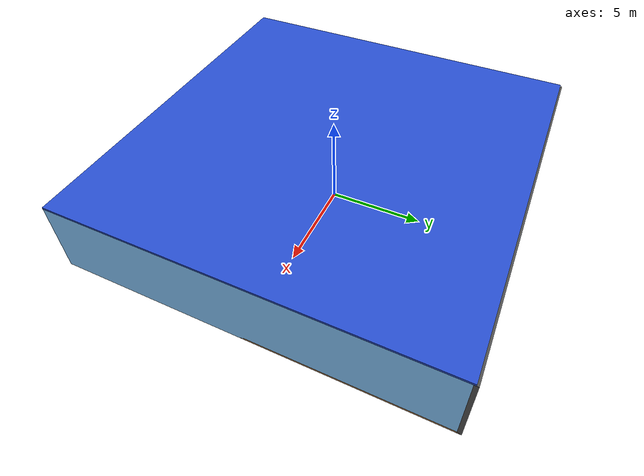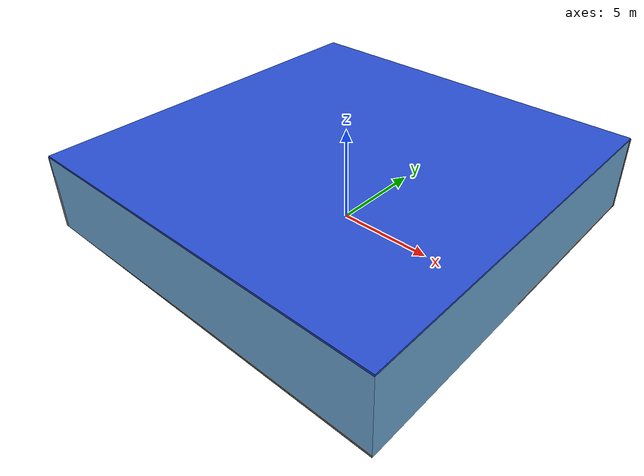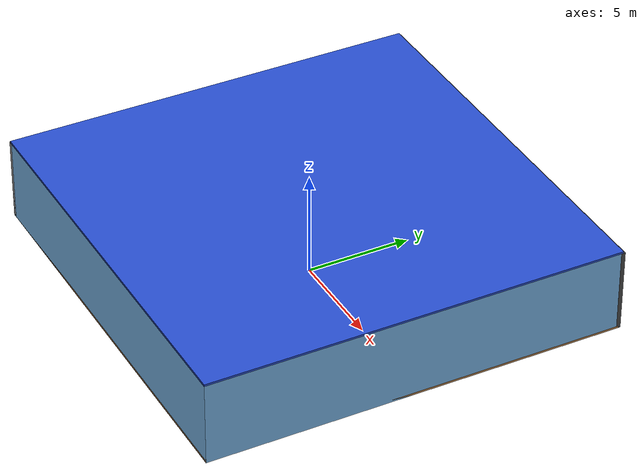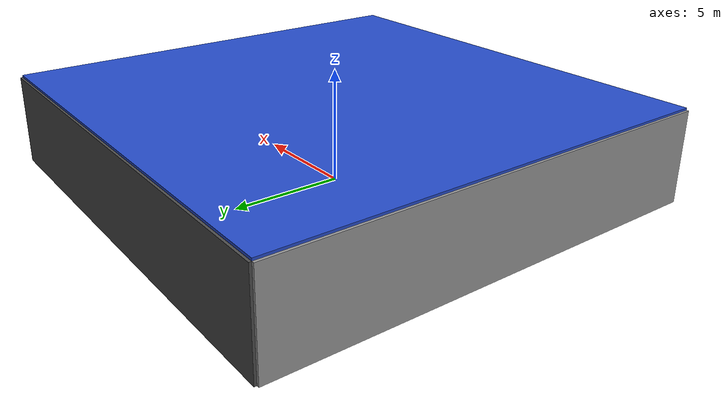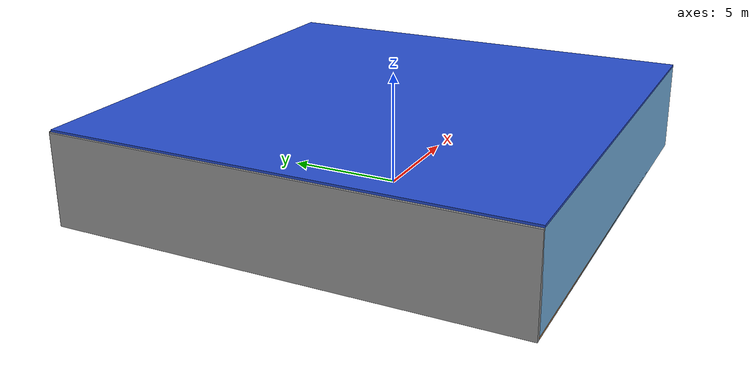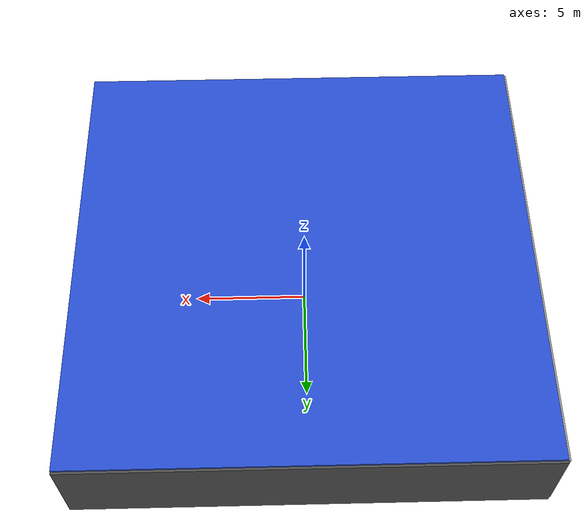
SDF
<sdf version="1.4">
 <world name="default">
  <physics type="ode">
   <max_step_size>0.001</max_step_size>
   <real_time_factor>1</real_time_factor>
   <real_time_update_rate>1000</real_time_update_rate>
   <gravity>0 0 -9.8</gravity>
  </physics>
  <scene><ambient>0.4 0.4 0.4 1</ambient><background>0.7 0.7 0.7 1</background><shadows>1</shadows></scene>
  <model name="Surrounding">
   <static>1</static>
   <link name="Ceiling">
    <collision name="Ceiling_Collision"><geometry><box><size>20 20 0.1</size></box></geometry></collision>
    <visual name="Ceiling_Visual">
     <geometry><box><size>20 20 0.1</size></box></geometry>
     <material>
      <script><uri>file://media/materials/scripts/gazebo.material</uri><name>Gazebo/Blue</name></script>
     </material>
    </visual>
    <pose>0 0 4.05 0 0 0</pose>
   </link>
   <link name="Wall_South">
    <collision name="Wall_South_Collision">
     <geometry><box><size>20 0 4</size></box></geometry>
     <pose>0 0 2 0 -0 0</pose>
    </collision>
    <visual name="Wall_South_Visual">
     <pose>0 0 2 0 -0 0</pose>
     <geometry><box><size>20 0 4</size></box></geometry>
     <material>
      <script><uri>file://media/materials/scripts/gazebo.material</uri><name>Gazebo/SkyBlue</name></script>
     </material>
    </visual>
    <velocity_decay><linear>0</linear><angular>0</angular></velocity_decay>
    <pose>0 -10 0 0 -0 0</pose>
   </link>
   <link name="Wall_East">
    <collision name="Wall_21_Collision">
     <geometry><box><size>20 0 4</size></box></geometry>
     <pose>0 0 2 0 -0 0</pose>
    </collision>
    <visual name="Wall_21_Visual">
     <pose>0 0 2 0 -0 0</pose>
     <geometry><box><size>20 0 4</size></box></geometry>
     <material>
      <script><uri>file://media/materials/scripts/gazebo.material</uri><name>Gazebo/SkyBlue</name></script>
     </material>
    </visual>
    <velocity_decay><linear>0</linear><angular>0</angular></velocity_decay>
    <pose>10 0 0 0 -0 1.5708</pose>
   </link>
   <link name="Wall_North">
    <collision name="Wall_22_Collision">
     <geometry><box><size>20 0.2 4</size></box></geometry>
     <pose>0 0 2 0 -0 0</pose>
    </collision>
    <visual name="Wall_22_Visual">
     <pose>0 0 2 0 -0 0</pose>
     <geometry><box><size>20 0.2 4</size></box></geometry>
     <material>
      <script><uri>file://media/materials/scripts/gazebo.material</uri><name>Gazebo/Road</name></script>
     </material>
    </visual>
    <velocity_decay><linear>0</linear><angular>0</angular></velocity_decay>
    <pose>0 10 0 0 -0 0</pose>
   </link>
   <link name="Wall_West">
    <collision name="Wall_23_Collision">
     <geometry><box><size>20 0.2 4</size></box></geometry>
     <pose>0 0 2 0 -0 0</pose>
    </collision>
    <visual name="Wall_23_Visual">
     <pose>0 0 2 0 -0 0</pose>
     <geometry><box><size>20 0.2 4</size></box></geometry>
     <material>
      <script><uri>file://media/materials/scripts/gazebo.material</uri><name>Gazebo/GreyGradientSky</name></script>
     </material>
    </visual>
    <velocity_decay><linear>0</linear><angular>0</angular></velocity_decay>
    <pose>-10 0 0 0 0 -1.5708</pose>
   </link>
   <link name="Ground_link">
    <collision name="collision">
     <pose>0 0 .05 0 -0 0</pose>
     <geometry><box><size>20 20 0.1</size></box></geometry>
    </collision>
    <visual name="visual">
     <pose>0 0 .05 0 -0 0</pose>
     <geometry><box><size>20 20 0.1</size></box></geometry>
     <material>
      <script><uri>file://media/materials/scripts/gazebo.material</uri><name>Gazebo/WoodPallet</name></script>
     </material>
    </visual>
   </link>
   <static>1</static>
  </model>
  <spherical_coordinates>
   <surface_model>EARTH_WGS84</surface_model>
   <latitude_deg>0</latitude_deg>
   <longitude_deg>0</longitude_deg>
   <elevation>0</elevation>
   <heading_deg>0</heading_deg>
  </spherical_coordinates>
  <light name="lightball_0" type="diffuse">
   <diffuse>0.8 0.8 0.8 1</diffuse>
   <specular>0.2 0.2 0.2 1</specular>
   <attenuation>
    <range>100</range>
    <constant>0.7</constant>
    <linear>0.01</linear>
    <quadratic>0.001</quadratic>
   </attenuation>
   <direction>-0.5 0.1 -0.9</direction>
   <pose>-8.45789238257 1.53858370215 1.88946328856 0 0 0</pose>
  </light>
  <light name="lightball_1" type="diffuse">
   <diffuse>0.8 0.8 0.8 1</diffuse>
   <specular>0.2 0.2 0.2 1</specular>
   <attenuation>
    <range>100</range>
    <constant>0.7</constant>
    <linear>0.01</linear>
    <quadratic>0.001</quadratic>
   </attenuation>
   <direction>-0.5 0.1 -0.9</direction>
   <pose>9.89253331535 -6.36170333503 3.01065970306 0 0 0</pose>
  </light>
  <light name="lightball_2" type="diffuse">
   <diffuse>0.8 0.8 0.8 1</diffuse>
   <specular>0.2 0.2 0.2 1</specular>
   <attenuation>
    <range>100</range>
    <constant>0.7</constant>
    <linear>0.01</linear>
    <quadratic>0.001</quadratic>
   </attenuation>
   <direction>-0.5 0.1 -0.9</direction>
   <pose>4.67057211369 6.21718359491 3.74505695117 0 0 0</pose>
  </light>
  <light name="lightball_3" type="diffuse">
   <diffuse>0.8 0.8 0.8 1</diffuse>
   <specular>0.2 0.2 0.2 1</specular>
   <attenuation>
    <range>100</range>
    <constant>0.7</constant>
    <linear>0.01</linear>
    <quadratic>0.001</quadratic>
   </attenuation>
   <direction>-0.5 0.1 -0.9</direction>
   <pose>-2.74750166601 9.00570425907 3.45761473389 0 0 0</pose>
  </light>
  <light name="lightball_4" type="diffuse">
   <diffuse>0.8 0.8 0.8 1</diffuse>
   <specular>0.2 0.2 0.2 1</specular>
   <attenuation>
    <range>100</range>
    <constant>0.7</constant>
    <linear>0.01</linear>
    <quadratic>0.001</quadratic>
   </attenuation>
   <direction>-0.5 0.1 -0.9</direction>
   <pose>-1.04731427138 1.51315068973 3.22835516574 0 0 0</pose>
  </light>
  <light name="lightball_5" type="diffuse">
   <diffuse>0.8 0.8 0.8 1</diffuse>
   <specular>0.2 0.2 0.2 1</specular>
   <attenuation>
    <range>100</range>
    <constant>0.7</constant>
    <linear>0.01</linear>
    <quadratic>0.001</quadratic>
   </attenuation>
   <direction>-0.5 0.1 -0.9</direction>
   <pose>4.47434415478 1.57169168435 1.15441704309 0 0 0</pose>
  </light>
  <light name="lightball_6" type="diffuse">
   <diffuse>0.8 0.8 0.8 1</diffuse>
   <specular>0.2 0.2 0.2 1</specular>
   <attenuation>
    <range>100</range>
    <constant>0.7</constant>
    <linear>0.01</linear>
    <quadratic>0.001</quadratic>
   </attenuation>
   <direction>-0.5 0.1 -0.9</direction>
   <pose>1.61547252466 -8.29109818205 0.681915543973 0 0 0</pose>
  </light>
  <light name="lightball_7" type="diffuse">
   <diffuse>0.8 0.8 0.8 1</diffuse>
   <specular>0.2 0.2 0.2 1</specular>
   <attenuation>
    <range>100</range>
    <constant>0.7</constant>
    <linear>0.01</linear>
    <quadratic>0.001</quadratic>
   </attenuation>
   <direction>-0.5 0.1 -0.9</direction>
   <pose>-1.52108315606 6.16190774224 3.44597892295 0 0 0</pose>
  </light>
  <light name="lightball_8" type="diffuse">
   <diffuse>0.8 0.8 0.8 1</diffuse>
   <specular>0.2 0.2 0.2 1</specular>
   <attenuation>
    <range>100</range>
    <constant>0.7</constant>
    <linear>0.01</linear>
    <quadratic>0.001</quadratic>
   </attenuation>
   <direction>-0.5 0.1 -0.9</direction>
   <pose>0.347255881006 -7.26311113248 2.8997784678 0 0 0</pose>
  </light>
  <include>
   <uri>model://robocup_3Dsim_goal</uri>
   <pose>-7.83120804357 -7.90495054629 0 0 0 2.75147118849</pose>
  </include>
  <include>
   <uri>model://textured_shapes</uri>
   <pose>-4.37867140016 1.85181202854 0 0 0 1.68062682835</pose>
  </include>
  <include>
   <uri>model://construction_cone</uri>
   <pose>2.05323442191 -3.83353099311 0 0 0 2.23573894306</pose>
  </include>
  <include><uri>model://table</uri><pose>1.85426820686 -1.3038508989 0 0 0 0.842225710601</pose></include>
  <include>
   <uri>model://construction_cone</uri>
   <pose>1.03813092391 1.63338018806 0 0 0 1.04160773043</pose>
  </include>
  <include>
   <uri>model://robocup_3Dsim_goal</uri>
   <pose>4.96221564857 1.72696713603 0 0 0 0.214155197497</pose>
  </include>
 </world>
</sdf>

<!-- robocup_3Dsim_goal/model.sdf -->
<sdf version="1.5">
  <model name="robocup_3d_goal">
    <static>true</static>
    <link name="left_post">
      <pose>0 1.05 0.45 0 0 0</pose>
      <collision name="collision">
        <geometry>
          <cylinder>
            <radius>0.05</radius>
            <length>0.9</length>
          </cylinder>
        </geometry>
      </collision>
      <visual name="visual">
        <geometry>
          <cylinder>
            <radius>0.05</radius>
            <length>0.9</length>
          </cylinder>
        </geometry>
        <material>
          <script>
            <uri>file://media/materials/scripts/gazebo.material</uri>
            <name>Gazebo/ZincYellow</name>
          </script>
        </material>
      </visual>
    </link>
    <link name="left_support_horiz_lower">
      <pose>0.30 1.05 0.01 0 0 0</pose>
      <collision name="collision">
        <geometry>
          <box>
            <size>0.50 0.02 0.02</size>
          </box>
        </geometry>
      </collision>
      <visual name="visual">
        <geometry>
          <box>
            <size>0.50 0.02 0.02</size>
          </box>
        </geometry>
        <material>
          <script>
            <uri>file://media/materials/scripts/gazebo.material</uri>
            <name>Gazebo/White</name>
          </script>
        </material>
      </visual>
    </link>
    <link name="left_support_horiz_upper">
      <pose>0.30 1.05 0.79 0 0 0</pose>
      <collision name="collision">
        <geometry>
          <box>
            <size>0.50 0.02 0.02</size>
          </box>
        </geometry>
      </collision>
      <visual name="visual">
        <geometry>
          <box>
            <size>0.50 0.02 0.02</size>
          </box>
        </geometry>
        <material>
          <script>
            <uri>file://media/materials/scripts/gazebo.material</uri>
            <name>Gazebo/White</name>
          </script>
        </material>
      </visual>
    </link>
    <link name="left_support_vertical">
      <pose>0.56 1.05 0.4 0 1.5708 0</pose>
      <collision name="collision">
        <geometry>
          <box>
            <size>0.80 0.02 0.02</size>
          </box>
        </geometry>
      </collision>
      <visual name="visual">
        <geometry>
          <box>
            <size>0.80 0.02 0.02</size>
          </box>
        </geometry>
        <material>
          <script>
            <uri>file://media/materials/scripts/gazebo.material</uri>
            <name>Gazebo/White</name>
          </script>
        </material>
      </visual>
    </link>
    <link name="right_support_horiz_lower">
      <pose>0.30 -1.05 0.01 0 0 0</pose>
      <collision name="collision">
        <geometry>
          <box>
            <size>0.50 0.02 0.02</size>
          </box>
        </geometry>
      </collision>
      <visual name="visual">
        <geometry>
          <box>
            <size>0.50 0.02 0.02</size>
          </box>
        </geometry>
        <material>
          <script>
            <uri>file://media/materials/scripts/gazebo.material</uri>
            <name>Gazebo/White</name>
          </script>
        </material>
      </visual>
    </link>
    <link name="right_support_horiz_upper">
      <pose>0.30 -1.05 0.79 0 0 0</pose>
      <collision name="collision">
        <geometry>
          <box>
            <size>0.50 0.02 0.02</size>
          </box>
        </geometry>
      </collision>
      <visual name="visual">
        <geometry>
          <box>
            <size>0.50 0.02 0.02</size>
          </box>
        </geometry>
        <material>
          <script>
            <uri>file://media/materials/scripts/gazebo.material</uri>
            <name>Gazebo/White</name>
          </script>
        </material>
      </visual>
    </link>
    <link name="right_support_vertical">
      <pose>0.56 -1.05 0.4 0 1.5708 0</pose>
      <collision name="collision">
        <geometry>
          <box>
            <size>0.80 0.02 0.02</size>
          </box>
        </geometry>
      </collision>
      <visual name="visual">
        <geometry>
          <box>
            <size>0.80 0.02 0.02</size>
          </box>
        </geometry>
        <material>
          <script>
            <uri>file://media/materials/scripts/gazebo.material</uri>
            <name>Gazebo/White</name>
          </script>
        </material>
      </visual>
    </link>
    <link name="center_support_horiz_lower">
      <pose>0.56 0 0.01 0 1.5708 0</pose>
      <collision name="collision">
        <geometry>
          <box>
            <size>0.02 2.08 0.02</size>
          </box>
        </geometry>
      </collision>
      <visual name="visual">
        <geometry>
          <box>
            <size>0.02 2.08 0.02</size>
          </box>
        </geometry>
        <material>
          <script>
            <uri>file://media/materials/scripts/gazebo.material</uri>
            <name>Gazebo/White</name>
          </script>
        </material>
      </visual>
    </link>
    <link name="center_support_horiz_upper">
      <pose>0.56 0 0.79 0 1.5708 0</pose>
      <collision name="collision">
        <geometry>
          <box>
            <size>0.02 2.08 0.02</size>
          </box>
        </geometry>
      </collision>
      <visual name="visual">
        <geometry>
          <box>
            <size>0.02 2.08 0.02</size>
          </box>
        </geometry>
        <material>
          <script>
            <uri>file://media/materials/scripts/gazebo.material</uri>
            <name>Gazebo/White</name>
          </script>
        </material>
      </visual>
    </link>
    <link name="right_post">
      <pose>0 -1.05 0.45 0 0 0</pose>
      <collision name="collision">
        <geometry>
          <cylinder>
            <radius>0.05</radius>
            <length>0.9</length>
          </cylinder>
        </geometry>
      </collision>
      <visual name="visual">
        <geometry>
          <cylinder>
            <radius>0.05</radius>
            <length>0.9</length>
          </cylinder>
        </geometry>
        <material>
          <script>
            <uri>file://media/materials/scripts/gazebo.material</uri>
            <name>Gazebo/ZincYellow</name>
          </script>
        </material>
      </visual>
    </link>
    <link name="crossbar">
      <pose>0 0 0.85 1.57 1.57 0</pose>
      <collision name="collision">
        <geometry>
          <cylinder>
            <radius>0.05</radius>
            <length>2.0</length>
          </cylinder>
        </geometry>
      </collision>
      <visual name="visual">
        <geometry>
          <cylinder>
            <radius>0.05</radius>
            <length>2.0</length>
          </cylinder>
        </geometry>
        <material>
          <script>
            <uri>file://media/materials/scripts/gazebo.material</uri>
            <name>Gazebo/ZincYellow</name>
          </script>
        </material>
      </visual>
    </link>
    <link name="center_net">
      <pose>0.56 0 0.40 0 0 0</pose>
      <collision name="collision">
        <geometry>
          <box>
            <size>0.01 2.1 0.80</size>
          </box>
        </geometry>
      </collision>
      <visual name="visual">
        <geometry>
          <box>
            <size>0.01 2.1 0.80</size>
          </box>
        </geometry>
        <material>
          <script>
            <uri>model://../model_source/models/robocup09_spl_field/materials/scripts/</uri>
            <uri>model://../model_source/models/robocup09_spl_field/materials/textures/</uri>
            <name>RoboCup/Net</name>
          </script>
        </material>
      </visual>
    </link>
    <link name="left_net">
      <pose>0.30 1.05 0.40 0 0 0</pose>
      <collision name="collision">
        <geometry>
          <box>
            <size>0.50 0.01 0.76</size>
          </box>
        </geometry>
      </collision>
      <visual name="visual">
        <geometry>
          <box>
            <size>0.50 0.01 0.76</size>
          </box>
        </geometry>
        <material>
          <script>
            <uri>model://../model_source/models/robocup09_spl_field/materials/scripts/</uri>
            <uri>model://../model_source/models/robocup09_spl_field/materials/textures/</uri>
            <name>RoboCup/Net</name>
          </script>
        </material>
      </visual>
    </link>
    <link name="right_net">
      <pose>0.30 -1.05 0.40 0 0 0</pose>
      <collision name="collision">
        <geometry>
          <box>
            <size>0.50 0.01 0.76</size>
          </box>
        </geometry>
      </collision>
      <visual name="visual">
        <geometry>
          <box>
            <size>0.50 0.01 0.76</size>
          </box>
        </geometry>
        <material>
          <script>
            <uri>model://../model_source/models/robocup09_spl_field/materials/scripts/</uri>
            <uri>model://../model_source/models/robocup09_spl_field/materials/textures/</uri>
            <name>RoboCup/Net</name>
          </script>
        </material>
      </visual>
    </link>
  </model>
</sdf>

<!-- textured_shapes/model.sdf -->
<sdf version="1.6">
  <model name="textured_shapes">
    <pose>0 0 0.5 0 0 0</pose>
    <link name="box">
      <pose>0 -1.5 0 0 0 0</pose>
      <collision name="collision">
        <geometry>
          <box>
            <size>1 1 1</size>
          </box>
        </geometry>
      </collision>
      <visual name="visual">
        <geometry>
          <box>
            <size>1 1 1</size>
          </box>
        </geometry>
        <material>
          <script>
            <uri>model://../model_source/models/textured_shapes/materials/scripts</uri>
            <uri>model://../model_source/models/textured_shapes/materials/textures</uri>
            <name>TexturedShape/Squares</name>
          </script>
        </material>
      </visual>
    </link>
    <link name="sphere">
      <collision name="collision">
        <geometry>
          <sphere>
            <radius>0.5</radius>
          </sphere>
        </geometry>
      </collision>
      <visual name="visual">
        <geometry>
          <sphere>
            <radius>0.5</radius>
          </sphere>
        </geometry>
        <material>
          <script>
            <uri>model://../model_source/models/textured_shapes/materials/scripts</uri>
            <uri>model://../model_source/models/textured_shapes/materials/textures</uri>
            <name>TexturedShape/Squares</name>
          </script>
        </material>
      </visual>
    </link>
    <link name="cylinder">
      <pose>0 1.5 0 0 0 0</pose>
      <collision name="collision">
        <geometry>
          <cylinder>
            <radius>0.5</radius>
            <length>1</length>
          </cylinder>
        </geometry>
      </collision>
      <visual name="visual">
        <geometry>
          <cylinder>
            <radius>0.5</radius>
            <length>1</length>
          </cylinder>
        </geometry>
        <material>
          <script>
            <uri>model://../model_source/models/textured_shapes/materials/scripts</uri>
            <uri>model://../model_source/models/textured_shapes/materials/textures</uri>
            <name>TexturedShape/Squares</name>
          </script>
        </material>
      </visual>
    </link>
  </model>
</sdf>

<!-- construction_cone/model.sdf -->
<sdf version="1.5">
  <model name="Construction Cone">
    <link name="link">
      <collision name="collision">
        <geometry>
          <mesh>
            <scale>10 10 10</scale>
            <uri>file://isr-testbed/construction_cone/meshes/construction_cone.dae</uri>
          </mesh>
        </geometry>
      </collision>
      <visual name="visual">
        <geometry>
          <mesh>
            <scale>10 10 10</scale>
            <uri>file://isr-testbed/construction_cone/meshes/construction_cone.dae</uri>
          </mesh>
        </geometry>
      </visual>
    </link>
  </model>
</sdf>

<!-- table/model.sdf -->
<sdf version="1.5">
  <model name="table">
    <static>true</static>
    <link name="link">
      <collision name="surface">
        <pose>0 0 1.0 0 0 0</pose>
        <geometry>
          <box>
            <size>1.5 0.8 0.03</size>
          </box>
        </geometry>
        <surface>
          <friction>
            <ode>
              <mu>0.6</mu>
              <mu2>0.6</mu2>
            </ode>
          </friction>
        </surface>
      </collision>
      <visual name="visual1">
        <pose>0 0 1.0 0 0 0</pose>
        <geometry>
          <box>
            <size>1.5 0.8 0.03</size>
          </box>
        </geometry>
        <material>
          <script>
            <uri>model://media/materials/scripts/gazebo.material</uri>
            <name>Gazebo/Wood</name>
          </script>
        </material>
      </visual>
      <collision name="front_left_leg">
        <pose>0.68 0.38 0.5 0 0 0</pose>
        <geometry>
          <cylinder>
            <radius>0.02</radius>
            <length>1.0</length>
          </cylinder>
        </geometry>
      </collision>
      <visual name="front_left_leg">
        <pose>0.68 0.38 0.5 0 0 0</pose>
        <geometry>
          <cylinder>
            <radius>0.02</radius>
            <length>1.0</length>
          </cylinder>
        </geometry>
        <material>
          <script>
            <uri>model://media/materials/scripts/gazebo.material</uri>
            <name>Gazebo/Grey</name>
          </script>
        </material>
      </visual>
      <collision name="front_right_leg">
        <pose>0.68 -0.38 0.5 0 0 0</pose>
        <geometry>
          <cylinder>
            <radius>0.02</radius>
            <length>1.0</length>
          </cylinder>
        </geometry>
      </collision>
      <visual name="front_right_leg">
        <pose>0.68 -0.38 0.5 0 0 0</pose>
        <geometry>
          <cylinder>
            <radius>0.02</radius>
            <length>1.0</length>
          </cylinder>
        </geometry>
        <material>
          <script>
            <uri>model://media/materials/scripts/gazebo.material</uri>
            <name>Gazebo/Grey</name>
          </script>
        </material>
      </visual>
      <collision name="back_right_leg">
        <pose>-0.68 -0.38 0.5 0 0 0</pose>
        <geometry>
          <cylinder>
            <radius>0.02</radius>
            <length>1.0</length>
          </cylinder>
        </geometry>
      </collision>
      <visual name="back_right_leg">
        <pose>-0.68 -0.38 0.5 0 0 0</pose>
        <geometry>
          <cylinder>
            <radius>0.02</radius>
            <length>1.0</length>
          </cylinder>
        </geometry>
        <material>
          <script>
            <uri>model://media/materials/scripts/gazebo.material</uri>
            <name>Gazebo/Grey</name>
          </script>
        </material>
      </visual>
      <collision name="back_left_leg">
        <pose>-0.68 0.38 0.5 0 0 0</pose>
        <geometry>
          <cylinder>
            <radius>0.02</radius>
            <length>1.0</length>
          </cylinder>
        </geometry>
      </collision>
      <visual name="back_left_leg">
        <pose>-0.68 0.38 0.5 0 0 0</pose>
        <geometry>
          <cylinder>
            <radius>0.02</radius>
            <length>1.0</length>
          </cylinder>
        </geometry>
        <material>
          <script>
            <uri>model://media/materials/scripts/gazebo.material</uri>
            <name>Gazebo/Grey</name>
          </script>
        </material>
      </visual>
    </link>
  </model>
</sdf>
